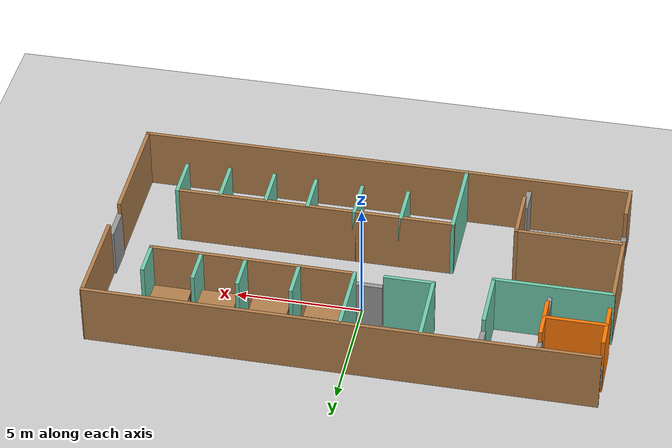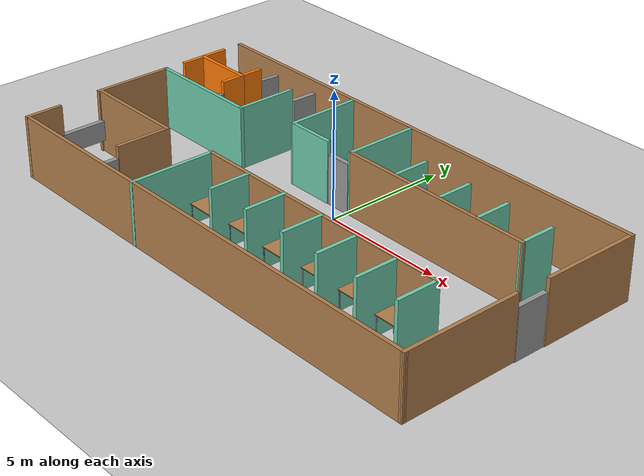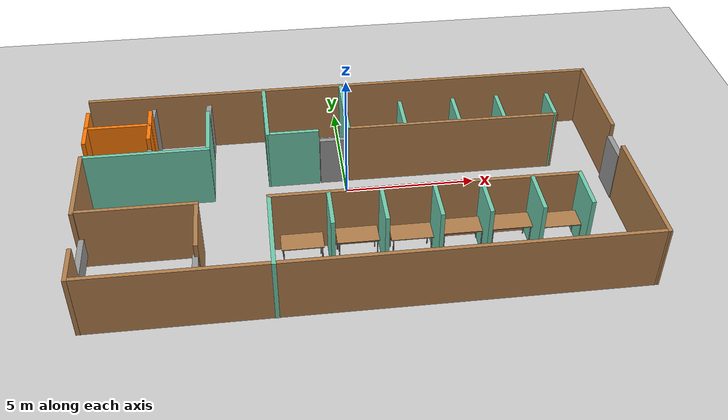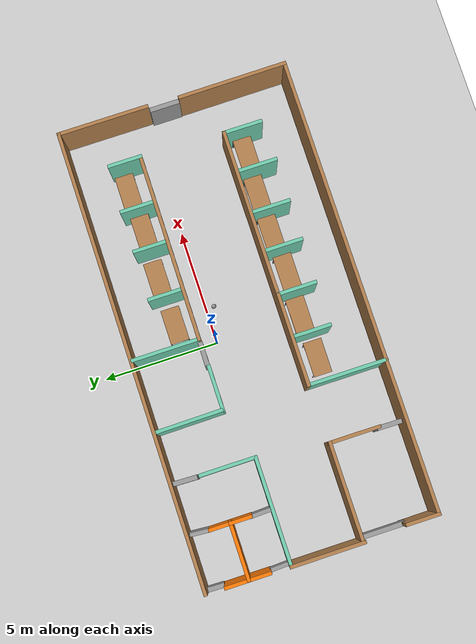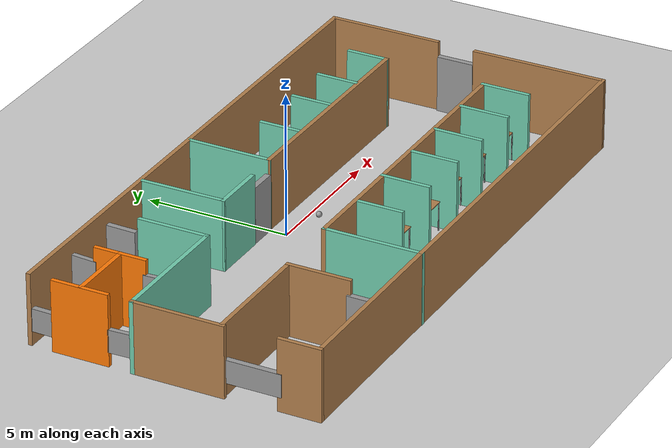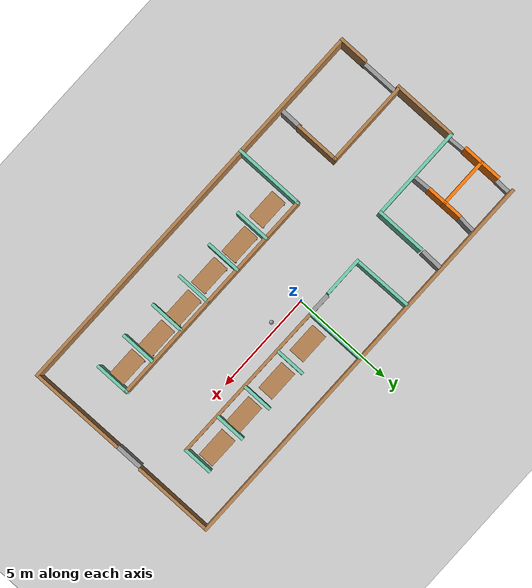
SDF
<sdf version="1.6">
 <world name="default">
  <light name="sun" type="directional">
   <pose>0 0 10 0 -0 0</pose>
   <diffuse>0.8 0.8 0.8 1</diffuse>
   <specular>0.2 0.2 0.2 1</specular>
   <attenuation>
    <range>1000</range>
    <constant>0.9</constant>
    <linear>0.01</linear>
    <quadratic>0.001</quadratic>
   </attenuation>
   <direction>-0.5 0.1 -0.9</direction>
  </light>
  <model name="ground_plane">
   <static>1</static>
   <link name="link">
    <collision name="collision">
     <geometry><plane><normal>0 0 1</normal><size>100 100</size></plane></geometry>
     <surface><friction><ode><mu>100</mu><mu2>50</mu2></ode></friction></surface>
    </collision>
    <visual name="visual">
     <cast_shadows>0</cast_shadows>
     <geometry><plane><normal>0 0 1</normal><size>100 100</size></plane></geometry>
     <material>
      <script><uri>file://media/materials/scripts/gazebo.material</uri><name>Gazebo/Grey</name></script>
     </material>
    </visual>
   </link>
  </model>
  <gravity>0 0 -9.8</gravity>
  <magnetic_field>6e-06 2.3e-05 -4.2e-05</magnetic_field>
  <atmosphere type="adiabatic"/>
  <physics name="default_physics" default="0" type="ode">
   <max_step_size>0.001</max_step_size>
   <real_time_factor>1</real_time_factor>
   <real_time_update_rate>1000</real_time_update_rate>
  </physics>
  <scene><ambient>0.4 0.4 0.4 1</ambient><background>0.7 0.7 0.7 1</background><shadows>1</shadows></scene>
  <spherical_coordinates>
   <surface_model>EARTH_WGS84</surface_model>
   <latitude_deg>0</latitude_deg>
   <longitude_deg>0</longitude_deg>
   <elevation>0</elevation>
   <heading_deg>0</heading_deg>
  </spherical_coordinates>
  <model name="Building_Project1">
   <pose>0.20176 -1.36165 0 0 -0 0</pose>
   <link name="Door_0">
    <collision name="Door_0_Collision">
     <geometry><box><size>1.05881 0.2 2</size></box></geometry>
     <pose>0 0 1 0 -0 0</pose>
    </collision>
    <visual name="Door_0_Visual">
     <pose>0 0 1 0 -0 0</pose>
     <geometry><box><size>1.05881 0.2 2</size></box></geometry>
     <material>
      <script><uri>file://media/materials/scripts/gazebo.material</uri><name>Gazebo/Grey</name></script>
     </material>
    </visual>
    <pose>-5.35018 4.37896 0 0 0 -1.59831</pose>
   </link>
   <link name="Door_1">
    <collision name="Door_1_Collision">
     <geometry><box><size>1.05984 0.2 2</size></box></geometry>
     <pose>0 0 1 0 -0 0</pose>
    </collision>
    <visual name="Door_1_Visual">
     <pose>0 0 1 0 -0 0</pose>
     <geometry><box><size>1.05984 0.2 2</size></box></geometry>
     <material>
      <script><uri>file://media/materials/scripts/gazebo.material</uri><name>Gazebo/Grey</name></script>
     </material>
    </visual>
    <pose>-5.79896 -4.29303 0 0 0 -1.58014</pose>
   </link>
   <link name="Door_3">
    <collision name="Door_3_Collision">
     <geometry><box><size>0.9 0.17 2</size></box></geometry>
     <pose>0 0 1 0 -0 0</pose>
    </collision>
    <visual name="Door_3_Visual">
     <pose>0 0 1 0 -0 0</pose>
     <geometry><box><size>0.9 0.17 2</size></box></geometry>
     <material>
      <script><uri>file://media/materials/scripts/gazebo.material</uri><name>Gazebo/Grey</name></script>
     </material>
    </visual>
    <pose>-7.52884 4.41842 0 0 0 -1.64776</pose>
   </link>
   <link name="Door_4">
    <collision name="Door_4_Collision">
     <geometry><box><size>0.9 0.17 2</size></box></geometry>
     <pose>0 0 1 0 -0 0</pose>
    </collision>
    <visual name="Door_4_Visual">
     <pose>0 0 1 0 -0 0</pose>
     <geometry><box><size>0.9 0.17 2</size></box></geometry>
     <material>
      <script><uri>file://media/materials/scripts/gazebo.material</uri><name>Gazebo/Grey</name></script>
     </material>
    </visual>
    <pose>-7.55544 1.8648 0 0 0 -1.53276</pose>
   </link>
   <link name="Door_6">
    <collision name="Door_6_Collision">
     <geometry><box><size>1.033 0.2 2</size></box></geometry>
     <pose>0 0 1 0 -0 0</pose>
    </collision>
    <visual name="Door_6_Visual">
     <pose>0 0 1 0 -0 0</pose>
     <geometry><box><size>1.033 0.2 2</size></box></geometry>
     <material>
      <script><uri>file://media/materials/scripts/gazebo.material</uri><name>Gazebo/Grey</name></script>
     </material>
    </visual>
    <pose>-0.639385 2.05168 0 0 -0 3.13315</pose>
   </link>
   <link name="Door_7">
    <collision name="Door_7_Collision">
     <geometry><box><size>1.299 0.2 2</size></box></geometry>
     <pose>0 0 1 0 -0 0</pose>
    </collision>
    <visual name="Door_7_Visual">
     <pose>0 0 1 0 -0 0</pose>
     <geometry><box><size>1.299 0.2 2</size></box></geometry>
     <material>
      <script><uri>file://media/materials/scripts/gazebo.material</uri><name>Gazebo/Grey</name></script>
     </material>
    </visual>
    <pose>9.89429 0.375193 0 0 0 -1.5708</pose>
   </link>
   <link name="Wall_1">
    <collision name="Wall_1_Collision">
     <geometry><box><size>20 0.15 2.5</size></box></geometry>
     <pose>0 0 1.25 0 -0 0</pose>
    </collision>
    <visual name="Wall_1_Visual">
     <pose>0 0 1.25 0 -0 0</pose>
     <geometry><box><size>20 0.15 2.5</size></box></geometry>
     <material>
      <script><uri>file://media/materials/scripts/gazebo.material</uri><name>Gazebo/Wood</name></script>
      <ambient>0.435294 0.796078 0.67451 1</ambient>
     </material>
     <meta><layer>0</layer></meta>
    </visual>
    <pose>0.022626 4.96982 0 0 -0 0</pose>
   </link>
   <link name="Wall_11">
    <collision name="Wall_11_Collision">
     <geometry><box><size>3.00532 0.15 2.5</size></box></geometry>
     <pose>0 0 1.25 0 -0 0</pose>
    </collision>
    <visual name="Wall_11_Visual">
     <pose>0 0 1.25 0 -0 0</pose>
     <geometry><box><size>3.00532 0.15 2.5</size></box></geometry>
     <material>
      <script><uri>file://media/materials/scripts/gazebo.material</uri><name>Gazebo/Grey</name></script>
      <ambient>0.435294 0.796078 0.67451 1</ambient>
     </material>
     <meta><layer>0</layer></meta>
    </visual>
    <pose>-3.12651 3.44303 0 0 0 -1.56148</pose>
   </link>
   <link name="Wall_17">
    <collision name="Wall_17_Collision">
     <geometry><box><size>4.25 0.15 2.5</size></box></geometry>
     <pose>0 0 1.25 0 -0 0</pose>
    </collision>
    <visual name="Wall_17_Visual">
     <pose>0 0 1.25 0 -0 0</pose>
     <geometry><box><size>4.25 0.15 2.5</size></box></geometry>
     <material>
      <script><uri>file://media/materials/scripts/gazebo.material</uri><name>Gazebo/Wood</name></script>
      <ambient>1 1 1 1</ambient>
     </material>
     <meta><layer>0</layer></meta>
    </visual>
    <pose>-7.79306 -1.69962 0 0 -0 0</pose>
   </link>
   <link name="Wall_18">
    <collision name="Wall_18_Collision">
     <geometry><box><size>2.25 0.15 2.5</size></box></geometry>
     <pose>0 0 1.25 0 -0 0</pose>
    </collision>
    <visual name="Wall_18_Visual">
     <pose>0 0 1.25 0 -0 0</pose>
     <geometry><box><size>2.25 0.15 2.5</size></box></geometry>
     <material>
      <script><uri>file://media/materials/scripts/gazebo.material</uri><name>Gazebo/Wood</name></script>
      <ambient>0.435294 0.796078 0.67451 1</ambient>
     </material>
     <meta><layer>0</layer></meta>
    </visual>
    <pose>-5.74306 -2.74962 0 0 0 -1.5708</pose>
   </link>
   <link name="Wall_20">
    <collision name="Wall_20_Collision">
     <geometry><box><size>3.5 0.15 2.5</size></box></geometry>
     <pose>0 0 1.25 0 -0 0</pose>
    </collision>
    <visual name="Wall_20_Visual">
     <pose>0 0 1.25 0 -0 0</pose>
     <geometry><box><size>3.5 0.15 2.5</size></box></geometry>
     <material>
      <script><uri>file://media/materials/scripts/gazebo.material</uri><name>Gazebo/Grey</name></script>
      <ambient>0.435294 0.796078 0.67451 1</ambient>
     </material>
     <meta><layer>0</layer></meta>
    </visual>
    <pose>-3.24621 -3.29482 0 0 0 -1.5708</pose>
   </link>
   <link name="Wall_22">
    <collision name="Wall_22_Collision">
     <geometry><box><size>11.25 0.15 2.5</size></box></geometry>
     <pose>0 0 1.25 0 -0 0</pose>
    </collision>
    <visual name="Wall_22_Visual">
     <pose>0 0 1.25 0 -0 0</pose>
     <geometry><box><size>11.25 0.15 2.5</size></box></geometry>
     <material>
      <script><uri>file://media/materials/scripts/gazebo.material</uri><name>Gazebo/Wood</name></script>
      <ambient>1 1 1 1</ambient>
     </material>
     <meta><layer>0</layer></meta>
    </visual>
    <pose>2.30379 -1.61982 0 0 -0 0</pose>
   </link>
   <link name="Wall_23">
    <collision name="Wall_23_Collision">
     <geometry><box><size>1.75 0.15 2.5</size></box></geometry>
     <pose>0 0 1.25 0 -0 0</pose>
    </collision>
    <visual name="Wall_23_Visual">
     <pose>0 0 1.25 0 -0 0</pose>
     <geometry><box><size>1.75 0.15 2.5</size></box></geometry>
     <material>
      <script><uri>file://media/materials/scripts/gazebo.material</uri><name>Gazebo/Grey</name></script>
      <ambient>0.435294 0.796078 0.67451 1</ambient>
     </material>
     <meta><layer>0</layer></meta>
    </visual>
    <pose>7.85379 -2.41982 0 0 0 -1.5708</pose>
   </link>
   <link name="Wall_25">
    <collision name="Wall_25_Collision">
     <geometry><box><size>2 0.15 2.5</size></box></geometry>
     <pose>0 0 1.25 0 -0 0</pose>
    </collision>
    <visual name="Wall_25_Visual">
     <pose>0 0 1.25 0 -0 0</pose>
     <geometry><box><size>2 0.15 2.5</size></box></geometry>
     <material>
      <script><uri>file://media/materials/scripts/gazebo.material</uri><name>Gazebo/Grey</name></script>
      <ambient>0.996078 0.47451 0.0196078 1</ambient>
     </material>
     <meta><layer>0</layer></meta>
    </visual>
    <pose>-9.92286 3.17422 0 0 0 -1.5708</pose>
   </link>
   <link name="Wall_27">
    <collision name="Wall_27_Collision">
     <geometry><box><size>2.5 0.15 2.5</size></box></geometry>
     <pose>0 0 1.25 0 -0 0</pose>
    </collision>
    <visual name="Wall_27_Visual">
     <pose>0 0 1.25 0 -0 0</pose>
     <geometry><box><size>2.5 0.15 2.5</size></box></geometry>
     <material>
      <script><uri>file://media/materials/scripts/gazebo.material</uri><name>Gazebo/Grey</name></script>
      <ambient>0.996078 0.47451 0.0196078 1</ambient>
     </material>
     <meta><layer>0</layer></meta>
    </visual>
    <pose>-8.72126 3.14161 0 0 -0 0</pose>
   </link>
   <link name="Wall_29">
    <collision name="Wall_29_Collision">
     <geometry><box><size>1 0.15 2.5</size></box></geometry>
     <pose>0 0 1.25 0 -0 0</pose>
    </collision>
    <visual name="Wall_29_Visual">
     <pose>0 0 1.25 0 -0 0</pose>
     <geometry><box><size>1 0.15 2.5</size></box></geometry>
     <material>
      <script><uri>file://media/materials/scripts/gazebo.material</uri><name>Gazebo/Grey</name></script>
      <ambient>0.996078 0.47451 0.0196078 1</ambient>
     </material>
     <meta><layer>0</layer></meta>
    </visual>
    <pose>-7.54626 3.56661 0 0 -0 1.5708</pose>
   </link>
   <link name="Wall_31">
    <collision name="Wall_31_Collision">
     <geometry><box><size>1 0.15 2.5</size></box></geometry>
     <pose>0 0 1.25 0 -0 0</pose>
    </collision>
    <visual name="Wall_31_Visual">
     <pose>0 0 1.25 0 -0 0</pose>
     <geometry><box><size>1 0.15 2.5</size></box></geometry>
     <material>
      <script><uri>file://media/materials/scripts/gazebo.material</uri><name>Gazebo/Grey</name></script>
      <ambient>0.996078 0.47451 0.0196078 1</ambient>
     </material>
     <meta><layer>0</layer></meta>
    </visual>
    <pose>-7.54626 2.71661 0 0 0 -1.5708</pose>
   </link>
   <link name="Wall_33">
    <collision name="Wall_33_Collision">
     <geometry><box><size>1.5 0.15 2.5</size></box></geometry>
     <pose>0 0 1.25 0 -0 0</pose>
    </collision>
    <visual name="Wall_33_Visual">
     <pose>0 0 1.25 0 -0 0</pose>
     <geometry><box><size>1.5 0.15 2.5</size></box></geometry>
     <material>
      <script><uri>file://media/materials/scripts/gazebo.material</uri><name>Gazebo/Wood</name></script>
      <ambient>1 1 1 1</ambient>
     </material>
     <meta><layer>0</layer></meta>
    </visual>
    <pose>-9.81646 -4.28984 0 0 0 -1.5708</pose>
   </link>
   <link name="Wall_35">
    <collision name="Wall_35_Collision">
     <geometry><box><size>3.25 0.15 2.5</size></box></geometry>
     <pose>0 0 1.25 0 -0 0</pose>
    </collision>
    <visual name="Wall_35_Visual">
     <pose>0 0 1.25 0 -0 0</pose>
     <geometry><box><size>3.25 0.15 2.5</size></box></geometry>
     <material>
      <script><uri>file://media/materials/scripts/gazebo.material</uri><name>Gazebo/Wood</name></script>
      <ambient>1 1 1 1</ambient>
     </material>
     <meta><layer>0</layer></meta>
    </visual>
    <pose>-9.94763 -0.199573 0 0 0 -1.5708</pose>
   </link>
   <link name="Wall_37">
    <collision name="Wall_37_Collision">
     <geometry><box><size>3 0.15 2.5</size></box></geometry>
     <pose>0 0 1.25 0 -0 0</pose>
    </collision>
    <visual name="Wall_37_Visual">
     <pose>0 0 1.25 0 -0 0</pose>
     <geometry><box><size>3 0.15 2.5</size></box></geometry>
     <material>
      <script><uri>file://media/materials/scripts/gazebo.material</uri><name>Gazebo/Grey</name></script>
      <ambient>0.435294 0.796078 0.67451 1</ambient>
     </material>
     <meta><layer>0</layer></meta>
    </visual>
    <pose>-0.054187 3.47223 0 0 0 -1.5708</pose>
   </link>
   <link name="Wall_39">
    <collision name="Wall_39_Collision">
     <geometry><box><size>1.5 0.15 2.5</size></box></geometry>
     <pose>0 0 1.25 0 -0 0</pose>
    </collision>
    <visual name="Wall_39_Visual">
     <pose>0 0 1.25 0 -0 0</pose>
     <geometry><box><size>1.5 0.15 2.5</size></box></geometry>
     <material>
      <script><uri>file://media/materials/scripts/gazebo.material</uri><name>Gazebo/Grey</name></script>
      <ambient>0.435294 0.796078 0.67451 1</ambient>
     </material>
     <meta><layer>0</layer></meta>
    </visual>
    <pose>2.12703 2.81263 0 0 0 -1.5708</pose>
   </link>
   <link name="Wall_41">
    <collision name="Wall_41_Collision">
     <geometry><box><size>1.5 0.15 2.5</size></box></geometry>
     <pose>0 0 1.25 0 -0 0</pose>
    </collision>
    <visual name="Wall_41_Visual">
     <pose>0 0 1.25 0 -0 0</pose>
     <geometry><box><size>1.5 0.15 2.5</size></box></geometry>
     <material>
      <script><uri>file://media/materials/scripts/gazebo.material</uri><name>Gazebo/Grey</name></script>
      <ambient>0.435294 0.796078 0.67451 1</ambient>
     </material>
     <meta><layer>0</layer></meta>
    </visual>
    <pose>7.98679 2.69043 0 0 -0 1.5708</pose>
   </link>
   <link name="Wall_5">
    <collision name="Wall_5_Collision">
     <geometry><box><size>19.75 0.15 2.5</size></box></geometry>
     <pose>0 0 1.25 0 -0 0</pose>
    </collision>
    <visual name="Wall_5_Visual">
     <pose>0 0 1.25 0 -0 0</pose>
     <geometry><box><size>19.75 0.15 2.5</size></box></geometry>
     <material>
      <script><uri>file://media/materials/scripts/gazebo.material</uri><name>Gazebo/Wood</name></script>
      <ambient>1 1 1 1</ambient>
     </material>
     <meta><layer>0</layer></meta>
    </visual>
    <pose>0.121026 -4.95998 0 0 -0 0</pose>
   </link>
   <link name="Wall_51">
    <collision name="Wall_51_Collision">
     <geometry><box><size>1.5 0.15 2.5</size></box></geometry>
     <pose>0 0 1.25 0 -0 0</pose>
    </collision>
    <visual name="Wall_51_Visual">
     <pose>0 0 1.25 0 -0 0</pose>
     <geometry><box><size>1.5 0.15 2.5</size></box></geometry>
     <material>
      <script><uri>file://media/materials/scripts/gazebo.material</uri><name>Gazebo/Grey</name></script>
      <ambient>0.435294 0.796078 0.67451 1</ambient>
     </material>
     <meta><layer>0</layer></meta>
    </visual>
    <pose>4.22844 2.78582 0 0 0 -1.5708</pose>
   </link>
   <link name="Wall_53">
    <collision name="Wall_53_Collision">
     <geometry><box><size>1.5 0.15 2.5</size></box></geometry>
     <pose>0 0 1.25 0 -0 0</pose>
    </collision>
    <visual name="Wall_53_Visual">
     <pose>0 0 1.25 0 -0 0</pose>
     <geometry><box><size>1.5 0.15 2.5</size></box></geometry>
     <material>
      <script><uri>file://media/materials/scripts/gazebo.material</uri><name>Gazebo/Grey</name></script>
      <ambient>0.435294 0.796078 0.67451 1</ambient>
     </material>
     <meta><layer>0</layer></meta>
    </visual>
    <pose>5.98406 2.78582 0 0 0 -1.5708</pose>
   </link>
   <link name="Wall_55">
    <collision name="Wall_55_Collision">
     <geometry><box><size>8.19104 0.15 2.5</size></box></geometry>
     <pose>0 0 1.25 0 -0 0</pose>
    </collision>
    <visual name="Wall_55_Visual">
     <pose>0 0 1.25 0 -0 0</pose>
     <geometry><box><size>8.19104 0.15 2.5</size></box></geometry>
     <material>
      <script><uri>file://media/materials/scripts/gazebo.material</uri><name>Gazebo/Wood</name></script>
      <ambient>1 1 1 1</ambient>
     </material>
     <meta><layer>0</layer></meta>
    </visual>
    <pose>3.9663 2.03133 0 0 0 -0.003954</pose>
   </link>
   <link name="Wall_57">
    <collision name="Wall_57_Collision">
     <geometry><box><size>2 0.15 2.5</size></box></geometry>
     <pose>0 0 1.25 0 -0 0</pose>
    </collision>
    <visual name="Wall_57_Visual">
     <pose>0 0 1.25 0 -0 0</pose>
     <geometry><box><size>2 0.15 2.5</size></box></geometry>
     <material>
      <script><uri>file://media/materials/scripts/gazebo.material</uri><name>Gazebo/Grey</name></script>
      <ambient>0.435294 0.796078 0.67451 1</ambient>
     </material>
     <meta><layer>0</layer></meta>
    </visual>
    <pose>-2.18821 2.01543 0 0 -0 0</pose>
   </link>
   <link name="Wall_59">
    <collision name="Wall_59_Collision">
     <geometry><box><size>1.75 0.15 2.5</size></box></geometry>
     <pose>0 0 1.25 0 -0 0</pose>
    </collision>
    <visual name="Wall_59_Visual">
     <pose>0 0 1.25 0 -0 0</pose>
     <geometry><box><size>1.75 0.15 2.5</size></box></geometry>
     <material>
      <script><uri>file://media/materials/scripts/gazebo.material</uri><name>Gazebo/Grey</name></script>
      <ambient>0.435294 0.796078 0.67451 1</ambient>
     </material>
     <meta><layer>0</layer></meta>
    </visual>
    <pose>-1.17139 -2.41982 0 0 0 -1.5708</pose>
   </link>
   <link name="Wall_61">
    <collision name="Wall_61_Collision">
     <geometry><box><size>1.75 0.15 2.5</size></box></geometry>
     <pose>0 0 1.25 0 -0 0</pose>
    </collision>
    <visual name="Wall_61_Visual">
     <pose>0 0 1.25 0 -0 0</pose>
     <geometry><box><size>1.75 0.15 2.5</size></box></geometry>
     <material>
      <script><uri>file://media/materials/scripts/gazebo.material</uri><name>Gazebo/Grey</name></script>
      <ambient>0.435294 0.796078 0.67451 1</ambient>
     </material>
     <meta><layer>0</layer></meta>
    </visual>
    <pose>0.690619 -2.41982 0 0 0 -1.5708</pose>
   </link>
   <link name="Wall_63">
    <collision name="Wall_63_Collision">
     <geometry><box><size>1.75 0.15 2.5</size></box></geometry>
     <pose>0 0 1.25 0 -0 0</pose>
    </collision>
    <visual name="Wall_63_Visual">
     <pose>0 0 1.25 0 -0 0</pose>
     <geometry><box><size>1.75 0.15 2.5</size></box></geometry>
     <material>
      <script><uri>file://media/materials/scripts/gazebo.material</uri><name>Gazebo/Grey</name></script>
      <ambient>0.435294 0.796078 0.67451 1</ambient>
     </material>
     <meta><layer>0</layer></meta>
    </visual>
    <pose>2.57923 -2.44642 0 0 0 -1.5708</pose>
   </link>
   <link name="Wall_65">
    <collision name="Wall_65_Collision">
     <geometry><box><size>1.75 0.15 2.5</size></box></geometry>
     <pose>0 0 1.25 0 -0 0</pose>
    </collision>
    <visual name="Wall_65_Visual">
     <pose>0 0 1.25 0 -0 0</pose>
     <geometry><box><size>1.75 0.15 2.5</size></box></geometry>
     <material>
      <script><uri>file://media/materials/scripts/gazebo.material</uri><name>Gazebo/Grey</name></script>
      <ambient>0.435294 0.796078 0.67451 1</ambient>
     </material>
     <meta><layer>0</layer></meta>
    </visual>
    <pose>4.28165 -2.47302 0 0 0 -1.5708</pose>
   </link>
   <link name="Wall_67">
    <collision name="Wall_67_Collision">
     <geometry><box><size>1.75 0.15 2.5</size></box></geometry>
     <pose>0 0 1.25 0 -0 0</pose>
    </collision>
    <visual name="Wall_67_Visual">
     <pose>0 0 1.25 0 -0 0</pose>
     <geometry><box><size>1.75 0.15 2.5</size></box></geometry>
     <material>
      <script><uri>file://media/materials/scripts/gazebo.material</uri><name>Gazebo/Grey</name></script>
      <ambient>0.435294 0.796078 0.67451 1</ambient>
     </material>
     <meta><layer>0</layer></meta>
    </visual>
    <pose>6.11706 -2.49962 0 0 0 -1.5708</pose>
   </link>
   <link name="Wall_69">
    <collision name="Wall_69_Collision">
     <geometry><box><size>4 0.15 2.5</size></box></geometry>
     <pose>0 0 1.25 0 -0 0</pose>
    </collision>
    <visual name="Wall_69_Visual">
     <pose>0 0 1.25 0 -0 0</pose>
     <geometry><box><size>4 0.15 2.5</size></box></geometry>
     <material>
      <script><uri>file://media/materials/scripts/gazebo.material</uri><name>Gazebo/Wood</name></script>
      <ambient>1 1 1 1</ambient>
     </material>
     <meta><layer>0</layer></meta>
    </visual>
    <pose>9.94763 3.04482 0 0 0 -1.5708</pose>
   </link>
   <link name="Wall_71">
    <collision name="Wall_71_Collision">
     <geometry><box><size>4.76704 0.15 2.5</size></box></geometry>
     <pose>0 0 1.25 0 -0 0</pose>
    </collision>
    <visual name="Wall_71_Visual">
     <pose>0 0 1.25 0 -0 0</pose>
     <geometry><box><size>4.76704 0.15 2.5</size></box></geometry>
     <material>
      <script><uri>file://media/materials/scripts/gazebo.material</uri><name>Gazebo/Wood</name></script>
      <ambient>1 1 1 1</ambient>
     </material>
     <meta><layer>0</layer></meta>
    </visual>
    <pose>9.90766 -2.6515 0 0 0 -1.565</pose>
   </link>
   <link name="Wall_8">
    <collision name="Wall_8_Collision">
     <geometry><box><size>2.5 0.15 2.5</size></box></geometry>
     <pose>0 0 1.25 0 -0 0</pose>
    </collision>
    <visual name="Wall_8_Visual">
     <pose>0 0 1.25 0 -0 0</pose>
     <geometry><box><size>2.5 0.15 2.5</size></box></geometry>
     <material>
      <script><uri>file://media/materials/scripts/gazebo.material</uri><name>Gazebo/Grey</name></script>
      <ambient>0.435294 0.796078 0.67451 1</ambient>
     </material>
     <meta><layer>0</layer></meta>
    </visual>
    <pose>-5.34763 2.52543 0 0 0 -1.5708</pose>
   </link>
   <link name="Wall_9">
    <collision name="Wall_9_Collision">
     <geometry><box><size>4.75 0.15 2.5</size></box></geometry>
     <pose>0 0 1.25 0 -0 0</pose>
    </collision>
    <visual name="Wall_9_Visual">
     <pose>0 0 1.25 0 -0 0</pose>
     <geometry><box><size>4.75 0.15 2.5</size></box></geometry>
     <material>
      <script><uri>file://media/materials/scripts/gazebo.material</uri><name>Gazebo/Grey</name></script>
      <ambient>0.435294 0.796078 0.67451 1</ambient>
     </material>
     <meta><layer>0</layer></meta>
    </visual>
    <pose>-7.64763 1.35043 0 0 -0 3.14159</pose>
   </link>
   <link name="Window_0">
    <collision name="Window_0_Collision">
     <geometry><box><size>0.718543 0.2 0.8</size></box></geometry>
     <pose>0 0 0.4 0 -0 0</pose>
    </collision>
    <visual name="Window_0_Visual">
     <pose>0 0 0.4 0 -0 0</pose>
     <geometry><box><size>0.718543 0.2 0.8</size></box></geometry>
     <material>
      <script><uri>file://media/materials/scripts/gazebo.material</uri><name>Gazebo/Grey</name></script>
     </material>
    </visual>
    <pose>-9.87207 4.52552 0.5 0 0 -1.59483</pose>
   </link>
   <link name="Window_1">
    <collision name="Window_1_Collision">
     <geometry><box><size>0.8 0.17 0.8</size></box></geometry>
     <pose>0 0 0.4 0 -0 0</pose>
    </collision>
    <visual name="Window_1_Visual">
     <pose>0 0 0.4 0 -0 0</pose>
     <geometry><box><size>0.8 0.17 0.8</size></box></geometry>
     <material>
      <script><uri>file://media/materials/scripts/gazebo.material</uri><name>Gazebo/Grey</name></script>
     </material>
    </visual>
    <pose>-9.89626 1.8116 0.5 0 0 -1.52734</pose>
   </link>
   <link name="Window_2">
    <collision name="Window_2_Collision">
     <geometry><box><size>1.91721 0.2 0.8</size></box></geometry>
     <pose>0 0 0.4 0 -0 0</pose>
    </collision>
    <visual name="Window_2_Visual">
     <pose>0 0 0.4 0 -0 0</pose>
     <geometry><box><size>1.91721 0.2 0.8</size></box></geometry>
     <material>
      <script><uri>file://media/materials/scripts/gazebo.material</uri><name>Gazebo/Grey</name></script>
     </material>
    </visual>
    <pose>-9.81646 -2.73703 0.5 0 0 -1.56945</pose>
   </link>
   <static>1</static>
  </model>
  <model name="table">
   <static>1</static>
   <link name="link">
    <collision name="surface">
     <pose>0 0 1 0 -0 0</pose>
     <geometry><box><size>1.5 0.8 0.03</size></box></geometry>
     <surface><friction><ode><mu>0.6</mu><mu2>0.6</mu2></ode></friction></surface>
    </collision>
    <visual name="visual1">
     <pose>0 0 1 0 -0 0</pose>
     <geometry><box><size>1.5 0.8 0.03</size></box></geometry>
     <material>
      <script><uri>file://media/materials/scripts/gazebo.material</uri><name>Gazebo/Wood</name></script>
     </material>
    </visual>
    <collision name="front_left_leg">
     <pose>0.68 0.38 0.5 0 -0 0</pose>
     <geometry><cylinder><radius>0.02</radius><length>1</length></cylinder></geometry>
    </collision>
    <visual name="front_left_leg">
     <pose>0.68 0.38 0.5 0 -0 0</pose>
     <geometry><cylinder><radius>0.02</radius><length>1</length></cylinder></geometry>
     <material>
      <script><uri>file://media/materials/scripts/gazebo.material</uri><name>Gazebo/Grey</name></script>
     </material>
    </visual>
    <collision name="front_right_leg">
     <pose>0.68 -0.38 0.5 0 -0 0</pose>
     <geometry><cylinder><radius>0.02</radius><length>1</length></cylinder></geometry>
    </collision>
    <visual name="front_right_leg">
     <pose>0.68 -0.38 0.5 0 -0 0</pose>
     <geometry><cylinder><radius>0.02</radius><length>1</length></cylinder></geometry>
     <material>
      <script><uri>file://media/materials/scripts/gazebo.material</uri><name>Gazebo/Grey</name></script>
     </material>
    </visual>
    <collision name="back_right_leg">
     <pose>-0.68 -0.38 0.5 0 -0 0</pose>
     <geometry><cylinder><radius>0.02</radius><length>1</length></cylinder></geometry>
    </collision>
    <visual name="back_right_leg">
     <pose>-0.68 -0.38 0.5 0 -0 0</pose>
     <geometry><cylinder><radius>0.02</radius><length>1</length></cylinder></geometry>
     <material>
      <script><uri>file://media/materials/scripts/gazebo.material</uri><name>Gazebo/Grey</name></script>
     </material>
    </visual>
    <collision name="back_left_leg">
     <pose>-0.68 0.38 0.5 0 -0 0</pose>
     <geometry><cylinder><radius>0.02</radius><length>1</length></cylinder></geometry>
    </collision>
    <visual name="back_left_leg">
     <pose>-0.68 0.38 0.5 0 -0 0</pose>
     <geometry><cylinder><radius>0.02</radius><length>1</length></cylinder></geometry>
     <material>
      <script><uri>file://media/materials/scripts/gazebo.material</uri><name>Gazebo/Grey</name></script>
     </material>
    </visual>
   </link>
   <pose>-1.98922 -3.80795 0 0 -0 0</pose>
  </model>
  <model name="table_0">
   <static>1</static>
   <link name="link">
    <collision name="surface">
     <pose>0 0 1 0 -0 0</pose>
     <geometry><box><size>1.5 0.8 0.03</size></box></geometry>
     <surface><friction><ode><mu>0.6</mu><mu2>0.6</mu2></ode></friction></surface>
    </collision>
    <visual name="visual1">
     <pose>0 0 1 0 -0 0</pose>
     <geometry><box><size>1.5 0.8 0.03</size></box></geometry>
     <material>
      <script><uri>file://media/materials/scripts/gazebo.material</uri><name>Gazebo/Wood</name></script>
     </material>
    </visual>
    <collision name="front_left_leg">
     <pose>0.68 0.38 0.5 0 -0 0</pose>
     <geometry><cylinder><radius>0.02</radius><length>1</length></cylinder></geometry>
    </collision>
    <visual name="front_left_leg">
     <pose>0.68 0.38 0.5 0 -0 0</pose>
     <geometry><cylinder><radius>0.02</radius><length>1</length></cylinder></geometry>
     <material>
      <script><uri>file://media/materials/scripts/gazebo.material</uri><name>Gazebo/Grey</name></script>
     </material>
    </visual>
    <collision name="front_right_leg">
     <pose>0.68 -0.38 0.5 0 -0 0</pose>
     <geometry><cylinder><radius>0.02</radius><length>1</length></cylinder></geometry>
    </collision>
    <visual name="front_right_leg">
     <pose>0.68 -0.38 0.5 0 -0 0</pose>
     <geometry><cylinder><radius>0.02</radius><length>1</length></cylinder></geometry>
     <material>
      <script><uri>file://media/materials/scripts/gazebo.material</uri><name>Gazebo/Grey</name></script>
     </material>
    </visual>
    <collision name="back_right_leg">
     <pose>-0.68 -0.38 0.5 0 -0 0</pose>
     <geometry><cylinder><radius>0.02</radius><length>1</length></cylinder></geometry>
    </collision>
    <visual name="back_right_leg">
     <pose>-0.68 -0.38 0.5 0 -0 0</pose>
     <geometry><cylinder><radius>0.02</radius><length>1</length></cylinder></geometry>
     <material>
      <script><uri>file://media/materials/scripts/gazebo.material</uri><name>Gazebo/Grey</name></script>
     </material>
    </visual>
    <collision name="back_left_leg">
     <pose>-0.68 0.38 0.5 0 -0 0</pose>
     <geometry><cylinder><radius>0.02</radius><length>1</length></cylinder></geometry>
    </collision>
    <visual name="back_left_leg">
     <pose>-0.68 0.38 0.5 0 -0 0</pose>
     <geometry><cylinder><radius>0.02</radius><length>1</length></cylinder></geometry>
     <material>
      <script><uri>file://media/materials/scripts/gazebo.material</uri><name>Gazebo/Grey</name></script>
     </material>
    </visual>
   </link>
   <pose>1.18659 1.47184 0 0 -0 0</pose>
  </model>
  <model name="table_1">
   <static>1</static>
   <link name="link">
    <collision name="surface">
     <pose>0 0 1 0 -0 0</pose>
     <geometry><box><size>1.5 0.8 0.03</size></box></geometry>
     <surface><friction><ode><mu>0.6</mu><mu2>0.6</mu2></ode></friction></surface>
    </collision>
    <visual name="visual1">
     <pose>0 0 1 0 -0 0</pose>
     <geometry><box><size>1.5 0.8 0.03</size></box></geometry>
     <material>
      <script><uri>file://media/materials/scripts/gazebo.material</uri><name>Gazebo/Wood</name></script>
     </material>
    </visual>
    <collision name="front_left_leg">
     <pose>0.68 0.38 0.5 0 -0 0</pose>
     <geometry><cylinder><radius>0.02</radius><length>1</length></cylinder></geometry>
    </collision>
    <visual name="front_left_leg">
     <pose>0.68 0.38 0.5 0 -0 0</pose>
     <geometry><cylinder><radius>0.02</radius><length>1</length></cylinder></geometry>
     <material>
      <script><uri>file://media/materials/scripts/gazebo.material</uri><name>Gazebo/Grey</name></script>
     </material>
    </visual>
    <collision name="front_right_leg">
     <pose>0.68 -0.38 0.5 0 -0 0</pose>
     <geometry><cylinder><radius>0.02</radius><length>1</length></cylinder></geometry>
    </collision>
    <visual name="front_right_leg">
     <pose>0.68 -0.38 0.5 0 -0 0</pose>
     <geometry><cylinder><radius>0.02</radius><length>1</length></cylinder></geometry>
     <material>
      <script><uri>file://media/materials/scripts/gazebo.material</uri><name>Gazebo/Grey</name></script>
     </material>
    </visual>
    <collision name="back_right_leg">
     <pose>-0.68 -0.38 0.5 0 -0 0</pose>
     <geometry><cylinder><radius>0.02</radius><length>1</length></cylinder></geometry>
    </collision>
    <visual name="back_right_leg">
     <pose>-0.68 -0.38 0.5 0 -0 0</pose>
     <geometry><cylinder><radius>0.02</radius><length>1</length></cylinder></geometry>
     <material>
      <script><uri>file://media/materials/scripts/gazebo.material</uri><name>Gazebo/Grey</name></script>
     </material>
    </visual>
    <collision name="back_left_leg">
     <pose>-0.68 0.38 0.5 0 -0 0</pose>
     <geometry><cylinder><radius>0.02</radius><length>1</length></cylinder></geometry>
    </collision>
    <visual name="back_left_leg">
     <pose>-0.68 0.38 0.5 0 -0 0</pose>
     <geometry><cylinder><radius>0.02</radius><length>1</length></cylinder></geometry>
     <material>
      <script><uri>file://media/materials/scripts/gazebo.material</uri><name>Gazebo/Grey</name></script>
     </material>
    </visual>
   </link>
   <pose>-0.031056 -3.67565 0 0 -0 0</pose>
  </model>
  <model name="table_2">
   <static>1</static>
   <link name="link">
    <collision name="surface">
     <pose>0 0 1 0 -0 0</pose>
     <geometry><box><size>1.5 0.8 0.03</size></box></geometry>
     <surface><friction><ode><mu>0.6</mu><mu2>0.6</mu2></ode></friction></surface>
    </collision>
    <visual name="visual1">
     <pose>0 0 1 0 -0 0</pose>
     <geometry><box><size>1.5 0.8 0.03</size></box></geometry>
     <material>
      <script><uri>file://media/materials/scripts/gazebo.material</uri><name>Gazebo/Wood</name></script>
     </material>
    </visual>
    <collision name="front_left_leg">
     <pose>0.68 0.38 0.5 0 -0 0</pose>
     <geometry><cylinder><radius>0.02</radius><length>1</length></cylinder></geometry>
    </collision>
    <visual name="front_left_leg">
     <pose>0.68 0.38 0.5 0 -0 0</pose>
     <geometry><cylinder><radius>0.02</radius><length>1</length></cylinder></geometry>
     <material>
      <script><uri>file://media/materials/scripts/gazebo.material</uri><name>Gazebo/Grey</name></script>
     </material>
    </visual>
    <collision name="front_right_leg">
     <pose>0.68 -0.38 0.5 0 -0 0</pose>
     <geometry><cylinder><radius>0.02</radius><length>1</length></cylinder></geometry>
    </collision>
    <visual name="front_right_leg">
     <pose>0.68 -0.38 0.5 0 -0 0</pose>
     <geometry><cylinder><radius>0.02</radius><length>1</length></cylinder></geometry>
     <material>
      <script><uri>file://media/materials/scripts/gazebo.material</uri><name>Gazebo/Grey</name></script>
     </material>
    </visual>
    <collision name="back_right_leg">
     <pose>-0.68 -0.38 0.5 0 -0 0</pose>
     <geometry><cylinder><radius>0.02</radius><length>1</length></cylinder></geometry>
    </collision>
    <visual name="back_right_leg">
     <pose>-0.68 -0.38 0.5 0 -0 0</pose>
     <geometry><cylinder><radius>0.02</radius><length>1</length></cylinder></geometry>
     <material>
      <script><uri>file://media/materials/scripts/gazebo.material</uri><name>Gazebo/Grey</name></script>
     </material>
    </visual>
    <collision name="back_left_leg">
     <pose>-0.68 0.38 0.5 0 -0 0</pose>
     <geometry><cylinder><radius>0.02</radius><length>1</length></cylinder></geometry>
    </collision>
    <visual name="back_left_leg">
     <pose>-0.68 0.38 0.5 0 -0 0</pose>
     <geometry><cylinder><radius>0.02</radius><length>1</length></cylinder></geometry>
     <material>
      <script><uri>file://media/materials/scripts/gazebo.material</uri><name>Gazebo/Grey</name></script>
     </material>
    </visual>
   </link>
   <pose>1.8778 -3.75101 0 0 -0 0</pose>
  </model>
  <model name="table_3">
   <static>1</static>
   <link name="link">
    <collision name="surface">
     <pose>0 0 1 0 -0 0</pose>
     <geometry><box><size>1.5 0.8 0.03</size></box></geometry>
     <surface><friction><ode><mu>0.6</mu><mu2>0.6</mu2></ode></friction></surface>
    </collision>
    <visual name="visual1">
     <pose>0 0 1 0 -0 0</pose>
     <geometry><box><size>1.5 0.8 0.03</size></box></geometry>
     <material>
      <script><uri>file://media/materials/scripts/gazebo.material</uri><name>Gazebo/Wood</name></script>
     </material>
    </visual>
    <collision name="front_left_leg">
     <pose>0.68 0.38 0.5 0 -0 0</pose>
     <geometry><cylinder><radius>0.02</radius><length>1</length></cylinder></geometry>
    </collision>
    <visual name="front_left_leg">
     <pose>0.68 0.38 0.5 0 -0 0</pose>
     <geometry><cylinder><radius>0.02</radius><length>1</length></cylinder></geometry>
     <material>
      <script><uri>file://media/materials/scripts/gazebo.material</uri><name>Gazebo/Grey</name></script>
     </material>
    </visual>
    <collision name="front_right_leg">
     <pose>0.68 -0.38 0.5 0 -0 0</pose>
     <geometry><cylinder><radius>0.02</radius><length>1</length></cylinder></geometry>
    </collision>
    <visual name="front_right_leg">
     <pose>0.68 -0.38 0.5 0 -0 0</pose>
     <geometry><cylinder><radius>0.02</radius><length>1</length></cylinder></geometry>
     <material>
      <script><uri>file://media/materials/scripts/gazebo.material</uri><name>Gazebo/Grey</name></script>
     </material>
    </visual>
    <collision name="back_right_leg">
     <pose>-0.68 -0.38 0.5 0 -0 0</pose>
     <geometry><cylinder><radius>0.02</radius><length>1</length></cylinder></geometry>
    </collision>
    <visual name="back_right_leg">
     <pose>-0.68 -0.38 0.5 0 -0 0</pose>
     <geometry><cylinder><radius>0.02</radius><length>1</length></cylinder></geometry>
     <material>
      <script><uri>file://media/materials/scripts/gazebo.material</uri><name>Gazebo/Grey</name></script>
     </material>
    </visual>
    <collision name="back_left_leg">
     <pose>-0.68 0.38 0.5 0 -0 0</pose>
     <geometry><cylinder><radius>0.02</radius><length>1</length></cylinder></geometry>
    </collision>
    <visual name="back_left_leg">
     <pose>-0.68 0.38 0.5 0 -0 0</pose>
     <geometry><cylinder><radius>0.02</radius><length>1</length></cylinder></geometry>
     <material>
      <script><uri>file://media/materials/scripts/gazebo.material</uri><name>Gazebo/Grey</name></script>
     </material>
    </visual>
   </link>
   <pose>3.71447 -3.63424 0 0 -0 0</pose>
  </model>
  <model name="table_4">
   <static>1</static>
   <link name="link">
    <collision name="surface">
     <pose>0 0 1 0 -0 0</pose>
     <geometry><box><size>1.5 0.8 0.03</size></box></geometry>
     <surface><friction><ode><mu>0.6</mu><mu2>0.6</mu2></ode></friction></surface>
    </collision>
    <visual name="visual1">
     <pose>0 0 1 0 -0 0</pose>
     <geometry><box><size>1.5 0.8 0.03</size></box></geometry>
     <material>
      <script><uri>file://media/materials/scripts/gazebo.material</uri><name>Gazebo/Wood</name></script>
     </material>
    </visual>
    <collision name="front_left_leg">
     <pose>0.68 0.38 0.5 0 -0 0</pose>
     <geometry><cylinder><radius>0.02</radius><length>1</length></cylinder></geometry>
    </collision>
    <visual name="front_left_leg">
     <pose>0.68 0.38 0.5 0 -0 0</pose>
     <geometry><cylinder><radius>0.02</radius><length>1</length></cylinder></geometry>
     <material>
      <script><uri>file://media/materials/scripts/gazebo.material</uri><name>Gazebo/Grey</name></script>
     </material>
    </visual>
    <collision name="front_right_leg">
     <pose>0.68 -0.38 0.5 0 -0 0</pose>
     <geometry><cylinder><radius>0.02</radius><length>1</length></cylinder></geometry>
    </collision>
    <visual name="front_right_leg">
     <pose>0.68 -0.38 0.5 0 -0 0</pose>
     <geometry><cylinder><radius>0.02</radius><length>1</length></cylinder></geometry>
     <material>
      <script><uri>file://media/materials/scripts/gazebo.material</uri><name>Gazebo/Grey</name></script>
     </material>
    </visual>
    <collision name="back_right_leg">
     <pose>-0.68 -0.38 0.5 0 -0 0</pose>
     <geometry><cylinder><radius>0.02</radius><length>1</length></cylinder></geometry>
    </collision>
    <visual name="back_right_leg">
     <pose>-0.68 -0.38 0.5 0 -0 0</pose>
     <geometry><cylinder><radius>0.02</radius><length>1</length></cylinder></geometry>
     <material>
      <script><uri>file://media/materials/scripts/gazebo.material</uri><name>Gazebo/Grey</name></script>
     </material>
    </visual>
    <collision name="back_left_leg">
     <pose>-0.68 0.38 0.5 0 -0 0</pose>
     <geometry><cylinder><radius>0.02</radius><length>1</length></cylinder></geometry>
    </collision>
    <visual name="back_left_leg">
     <pose>-0.68 0.38 0.5 0 -0 0</pose>
     <geometry><cylinder><radius>0.02</radius><length>1</length></cylinder></geometry>
     <material>
      <script><uri>file://media/materials/scripts/gazebo.material</uri><name>Gazebo/Grey</name></script>
     </material>
    </visual>
   </link>
   <pose>5.48207 -3.61481 0 0 -0 0</pose>
  </model>
  <model name="table_5">
   <static>1</static>
   <link name="link">
    <collision name="surface">
     <pose>0 0 1 0 -0 0</pose>
     <geometry><box><size>1.5 0.8 0.03</size></box></geometry>
     <surface><friction><ode><mu>0.6</mu><mu2>0.6</mu2></ode></friction></surface>
    </collision>
    <visual name="visual1">
     <pose>0 0 1 0 -0 0</pose>
     <geometry><box><size>1.5 0.8 0.03</size></box></geometry>
     <material>
      <script><uri>file://media/materials/scripts/gazebo.material</uri><name>Gazebo/Wood</name></script>
     </material>
    </visual>
    <collision name="front_left_leg">
     <pose>0.68 0.38 0.5 0 -0 0</pose>
     <geometry><cylinder><radius>0.02</radius><length>1</length></cylinder></geometry>
    </collision>
    <visual name="front_left_leg">
     <pose>0.68 0.38 0.5 0 -0 0</pose>
     <geometry><cylinder><radius>0.02</radius><length>1</length></cylinder></geometry>
     <material>
      <script><uri>file://media/materials/scripts/gazebo.material</uri><name>Gazebo/Grey</name></script>
     </material>
    </visual>
    <collision name="front_right_leg">
     <pose>0.68 -0.38 0.5 0 -0 0</pose>
     <geometry><cylinder><radius>0.02</radius><length>1</length></cylinder></geometry>
    </collision>
    <visual name="front_right_leg">
     <pose>0.68 -0.38 0.5 0 -0 0</pose>
     <geometry><cylinder><radius>0.02</radius><length>1</length></cylinder></geometry>
     <material>
      <script><uri>file://media/materials/scripts/gazebo.material</uri><name>Gazebo/Grey</name></script>
     </material>
    </visual>
    <collision name="back_right_leg">
     <pose>-0.68 -0.38 0.5 0 -0 0</pose>
     <geometry><cylinder><radius>0.02</radius><length>1</length></cylinder></geometry>
    </collision>
    <visual name="back_right_leg">
     <pose>-0.68 -0.38 0.5 0 -0 0</pose>
     <geometry><cylinder><radius>0.02</radius><length>1</length></cylinder></geometry>
     <material>
      <script><uri>file://media/materials/scripts/gazebo.material</uri><name>Gazebo/Grey</name></script>
     </material>
    </visual>
    <collision name="back_left_leg">
     <pose>-0.68 0.38 0.5 0 -0 0</pose>
     <geometry><cylinder><radius>0.02</radius><length>1</length></cylinder></geometry>
    </collision>
    <visual name="back_left_leg">
     <pose>-0.68 0.38 0.5 0 -0 0</pose>
     <geometry><cylinder><radius>0.02</radius><length>1</length></cylinder></geometry>
     <material>
      <script><uri>file://media/materials/scripts/gazebo.material</uri><name>Gazebo/Grey</name></script>
     </material>
    </visual>
   </link>
   <pose>7.30125 -3.71553 0 0 -0 0</pose>
  </model>
  <model name="table_6">
   <static>1</static>
   <link name="link">
    <collision name="surface">
     <pose>0 0 1 0 -0 0</pose>
     <geometry><box><size>1.5 0.8 0.03</size></box></geometry>
     <surface><friction><ode><mu>0.6</mu><mu2>0.6</mu2></ode></friction></surface>
    </collision>
    <visual name="visual1">
     <pose>0 0 1 0 -0 0</pose>
     <geometry><box><size>1.5 0.8 0.03</size></box></geometry>
     <material>
      <script><uri>file://media/materials/scripts/gazebo.material</uri><name>Gazebo/Wood</name></script>
     </material>
    </visual>
    <collision name="front_left_leg">
     <pose>0.68 0.38 0.5 0 -0 0</pose>
     <geometry><cylinder><radius>0.02</radius><length>1</length></cylinder></geometry>
    </collision>
    <visual name="front_left_leg">
     <pose>0.68 0.38 0.5 0 -0 0</pose>
     <geometry><cylinder><radius>0.02</radius><length>1</length></cylinder></geometry>
     <material>
      <script><uri>file://media/materials/scripts/gazebo.material</uri><name>Gazebo/Grey</name></script>
     </material>
    </visual>
    <collision name="front_right_leg">
     <pose>0.68 -0.38 0.5 0 -0 0</pose>
     <geometry><cylinder><radius>0.02</radius><length>1</length></cylinder></geometry>
    </collision>
    <visual name="front_right_leg">
     <pose>0.68 -0.38 0.5 0 -0 0</pose>
     <geometry><cylinder><radius>0.02</radius><length>1</length></cylinder></geometry>
     <material>
      <script><uri>file://media/materials/scripts/gazebo.material</uri><name>Gazebo/Grey</name></script>
     </material>
    </visual>
    <collision name="back_right_leg">
     <pose>-0.68 -0.38 0.5 0 -0 0</pose>
     <geometry><cylinder><radius>0.02</radius><length>1</length></cylinder></geometry>
    </collision>
    <visual name="back_right_leg">
     <pose>-0.68 -0.38 0.5 0 -0 0</pose>
     <geometry><cylinder><radius>0.02</radius><length>1</length></cylinder></geometry>
     <material>
      <script><uri>file://media/materials/scripts/gazebo.material</uri><name>Gazebo/Grey</name></script>
     </material>
    </visual>
    <collision name="back_left_leg">
     <pose>-0.68 0.38 0.5 0 -0 0</pose>
     <geometry><cylinder><radius>0.02</radius><length>1</length></cylinder></geometry>
    </collision>
    <visual name="back_left_leg">
     <pose>-0.68 0.38 0.5 0 -0 0</pose>
     <geometry><cylinder><radius>0.02</radius><length>1</length></cylinder></geometry>
     <material>
      <script><uri>file://media/materials/scripts/gazebo.material</uri><name>Gazebo/Grey</name></script>
     </material>
    </visual>
   </link>
   <pose>3.31971 1.5621 0 0 -0 0</pose>
  </model>
  <model name="table_7">
   <static>1</static>
   <link name="link">
    <collision name="surface">
     <pose>0 0 1 0 -0 0</pose>
     <geometry><box><size>1.5 0.8 0.03</size></box></geometry>
     <surface><friction><ode><mu>0.6</mu><mu2>0.6</mu2></ode></friction></surface>
    </collision>
    <visual name="visual1">
     <pose>0 0 1 0 -0 0</pose>
     <geometry><box><size>1.5 0.8 0.03</size></box></geometry>
     <material>
      <script><uri>file://media/materials/scripts/gazebo.material</uri><name>Gazebo/Wood</name></script>
     </material>
    </visual>
    <collision name="front_left_leg">
     <pose>0.68 0.38 0.5 0 -0 0</pose>
     <geometry><cylinder><radius>0.02</radius><length>1</length></cylinder></geometry>
    </collision>
    <visual name="front_left_leg">
     <pose>0.68 0.38 0.5 0 -0 0</pose>
     <geometry><cylinder><radius>0.02</radius><length>1</length></cylinder></geometry>
     <material>
      <script><uri>file://media/materials/scripts/gazebo.material</uri><name>Gazebo/Grey</name></script>
     </material>
    </visual>
    <collision name="front_right_leg">
     <pose>0.68 -0.38 0.5 0 -0 0</pose>
     <geometry><cylinder><radius>0.02</radius><length>1</length></cylinder></geometry>
    </collision>
    <visual name="front_right_leg">
     <pose>0.68 -0.38 0.5 0 -0 0</pose>
     <geometry><cylinder><radius>0.02</radius><length>1</length></cylinder></geometry>
     <material>
      <script><uri>file://media/materials/scripts/gazebo.material</uri><name>Gazebo/Grey</name></script>
     </material>
    </visual>
    <collision name="back_right_leg">
     <pose>-0.68 -0.38 0.5 0 -0 0</pose>
     <geometry><cylinder><radius>0.02</radius><length>1</length></cylinder></geometry>
    </collision>
    <visual name="back_right_leg">
     <pose>-0.68 -0.38 0.5 0 -0 0</pose>
     <geometry><cylinder><radius>0.02</radius><length>1</length></cylinder></geometry>
     <material>
      <script><uri>file://media/materials/scripts/gazebo.material</uri><name>Gazebo/Grey</name></script>
     </material>
    </visual>
    <collision name="back_left_leg">
     <pose>-0.68 0.38 0.5 0 -0 0</pose>
     <geometry><cylinder><radius>0.02</radius><length>1</length></cylinder></geometry>
    </collision>
    <visual name="back_left_leg">
     <pose>-0.68 0.38 0.5 0 -0 0</pose>
     <geometry><cylinder><radius>0.02</radius><length>1</length></cylinder></geometry>
     <material>
      <script><uri>file://media/materials/scripts/gazebo.material</uri><name>Gazebo/Grey</name></script>
     </material>
    </visual>
   </link>
   <pose>5.40635 1.49193 0 0 -0 0</pose>
  </model>
  <model name="table_8">
   <static>1</static>
   <link name="link">
    <collision name="surface">
     <pose>0 0 1 0 -0 0</pose>
     <geometry><box><size>1.5 0.8 0.03</size></box></geometry>
     <surface><friction><ode><mu>0.6</mu><mu2>0.6</mu2></ode></friction></surface>
    </collision>
    <visual name="visual1">
     <pose>0 0 1 0 -0 0</pose>
     <geometry><box><size>1.5 0.8 0.03</size></box></geometry>
     <material>
      <script><uri>file://media/materials/scripts/gazebo.material</uri><name>Gazebo/Wood</name></script>
     </material>
    </visual>
    <collision name="front_left_leg">
     <pose>0.68 0.38 0.5 0 -0 0</pose>
     <geometry><cylinder><radius>0.02</radius><length>1</length></cylinder></geometry>
    </collision>
    <visual name="front_left_leg">
     <pose>0.68 0.38 0.5 0 -0 0</pose>
     <geometry><cylinder><radius>0.02</radius><length>1</length></cylinder></geometry>
     <material>
      <script><uri>file://media/materials/scripts/gazebo.material</uri><name>Gazebo/Grey</name></script>
     </material>
    </visual>
    <collision name="front_right_leg">
     <pose>0.68 -0.38 0.5 0 -0 0</pose>
     <geometry><cylinder><radius>0.02</radius><length>1</length></cylinder></geometry>
    </collision>
    <visual name="front_right_leg">
     <pose>0.68 -0.38 0.5 0 -0 0</pose>
     <geometry><cylinder><radius>0.02</radius><length>1</length></cylinder></geometry>
     <material>
      <script><uri>file://media/materials/scripts/gazebo.material</uri><name>Gazebo/Grey</name></script>
     </material>
    </visual>
    <collision name="back_right_leg">
     <pose>-0.68 -0.38 0.5 0 -0 0</pose>
     <geometry><cylinder><radius>0.02</radius><length>1</length></cylinder></geometry>
    </collision>
    <visual name="back_right_leg">
     <pose>-0.68 -0.38 0.5 0 -0 0</pose>
     <geometry><cylinder><radius>0.02</radius><length>1</length></cylinder></geometry>
     <material>
      <script><uri>file://media/materials/scripts/gazebo.material</uri><name>Gazebo/Grey</name></script>
     </material>
    </visual>
    <collision name="back_left_leg">
     <pose>-0.68 0.38 0.5 0 -0 0</pose>
     <geometry><cylinder><radius>0.02</radius><length>1</length></cylinder></geometry>
    </collision>
    <visual name="back_left_leg">
     <pose>-0.68 0.38 0.5 0 -0 0</pose>
     <geometry><cylinder><radius>0.02</radius><length>1</length></cylinder></geometry>
     <material>
      <script><uri>file://media/materials/scripts/gazebo.material</uri><name>Gazebo/Grey</name></script>
     </material>
    </visual>
   </link>
   <pose>7.25116 1.58837 0 0 -0 0</pose>
  </model>
  <plugin name="welcome_plugin" filename="/home/robond/gazebo_plugin/welcome_plugin.so"/>
  <model name="my_ball">
   <link name="link_0">
    <inertial>
     <mass>1</mass>
     <inertia><ixx>0.1</ixx><ixy>0</ixy><ixz>0</ixz><iyy>0.1</iyy><iyz>0</iyz><izz>0.1</izz></inertia>
    </inertial>
    <visual name="visual">
     <geometry><sphere><radius>0.1</radius></sphere></geometry>
     <material>
      <lighting>1</lighting>
      <script><uri>file://media/materials/scripts/gazebo.material</uri><name>Gazebo/Grey</name></script>
      <shader type="pixel"><normal_map>__default__</normal_map></shader>
      <ambient>1 1 1 1</ambient>
      <diffuse>1 1 1 1</diffuse>
      <specular>1 1 1 1</specular>
      <emissive>1 1 1 1</emissive>
     </material>
    </visual>
    <collision name="collision">
     <geometry><sphere><radius>0.1</radius></sphere></geometry>
     <surface>
      <friction>
       <ode><mu>1</mu><mu2>1</mu2><fdir1>0 0 0</fdir1><slip1>0</slip1><slip2>0</slip2></ode>
       <torsional>
        <coefficient>1</coefficient>
        <patch_radius>0</patch_radius>
        <surface_radius>0</surface_radius>
        <use_patch_radius>1</use_patch_radius>
        <ode><slip>0</slip></ode>
       </torsional>
      </friction>
      <bounce><restitution_coefficient>0</restitution_coefficient><threshold>1e+06</threshold></bounce>
      <contact>
       <collide_without_contact>0</collide_without_contact>
       <collide_without_contact_bitmask>1</collide_without_contact_bitmask>
       <collide_bitmask>1</collide_bitmask>
       <ode>
        <soft_cfm>0</soft_cfm>
        <soft_erp>0.2</soft_erp>
        <kp>1e+13</kp>
        <kd>1</kd>
        <max_vel>0.01</max_vel>
        <min_depth>0</min_depth>
       </ode>
       <bullet>
        <split_impulse>1</split_impulse>
        <split_impulse_penetration_threshold>-0.01</split_impulse_penetration_threshold>
        <soft_cfm>0</soft_cfm>
        <soft_erp>0.2</soft_erp>
        <kp>1e+13</kp>
        <kd>1</kd>
       </bullet>
      </contact>
     </surface>
    </collision>
   </link>
   <static>0</static>
   <pose>1.55981 -0.352299 0.1 0 -0 0</pose>
  </model>
 </world>
</sdf>
